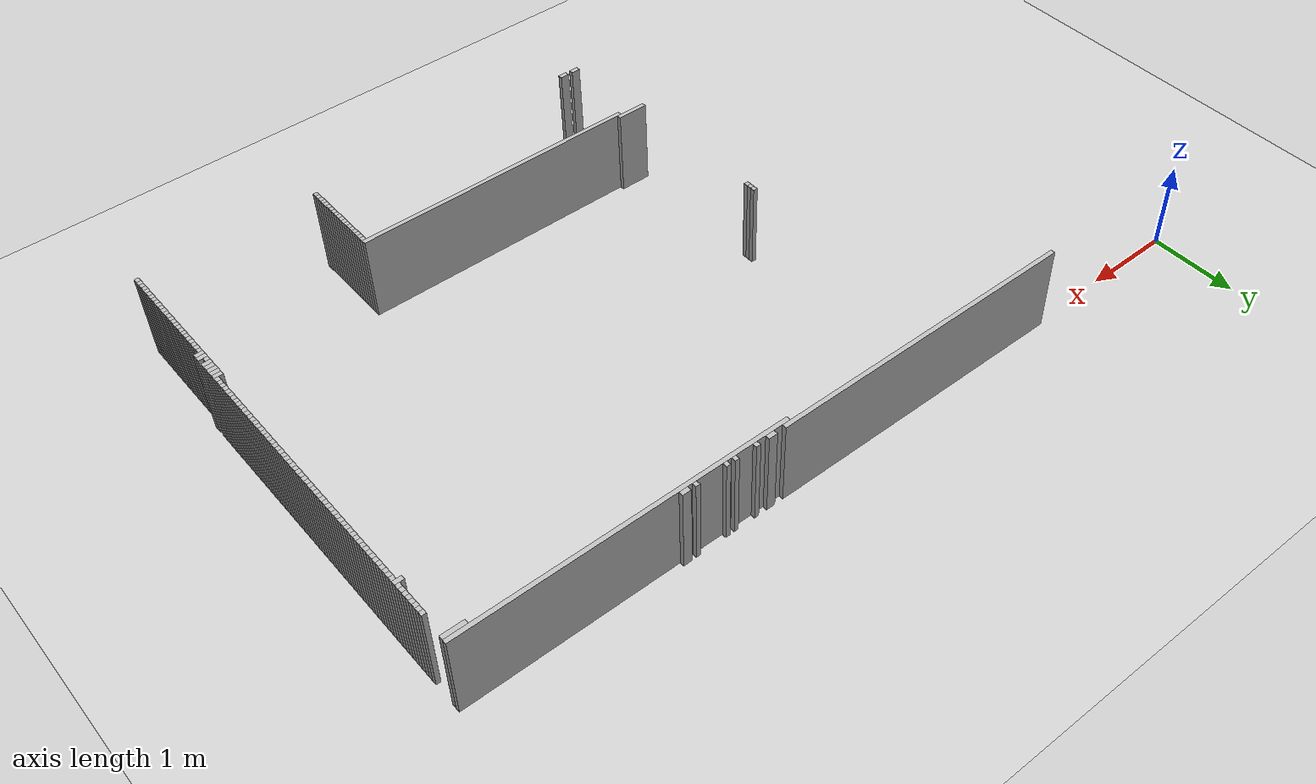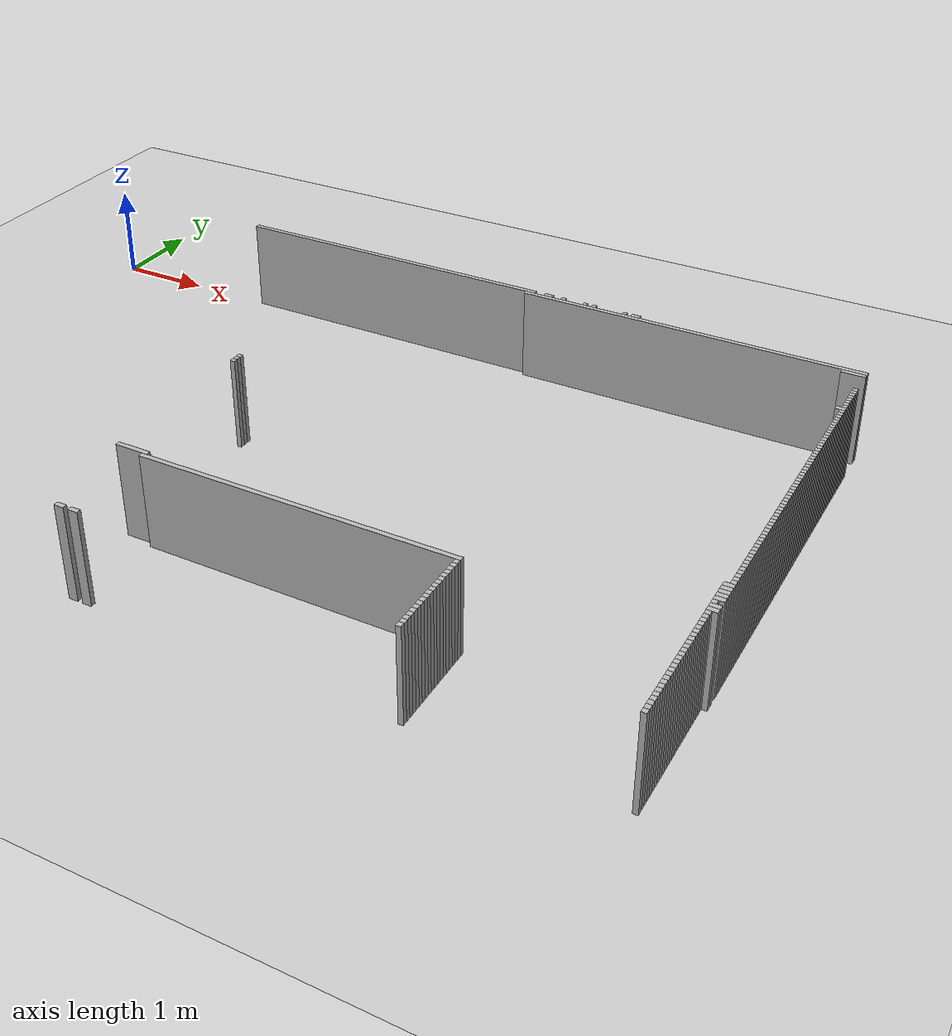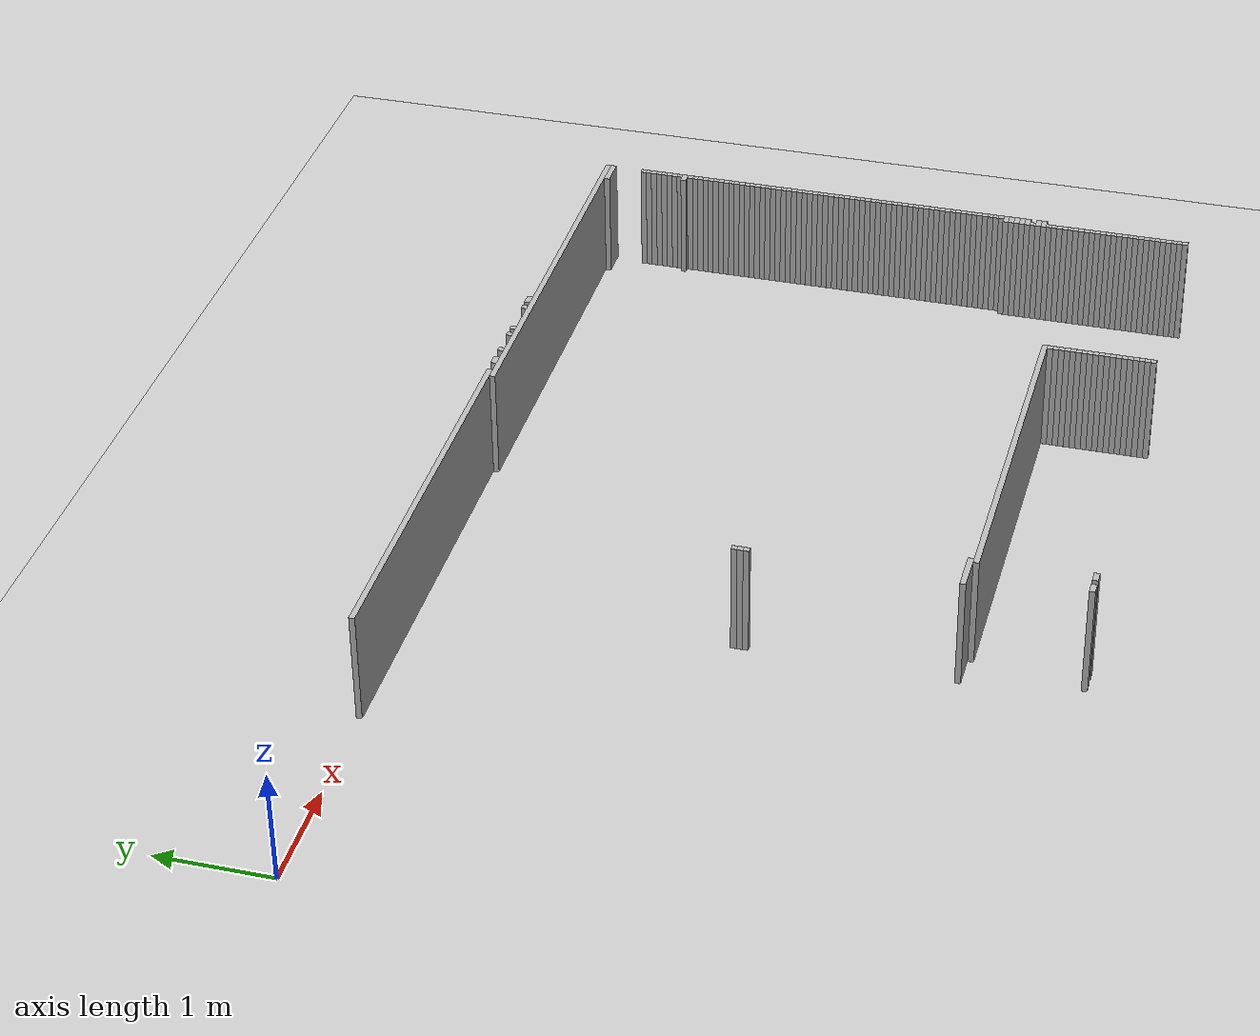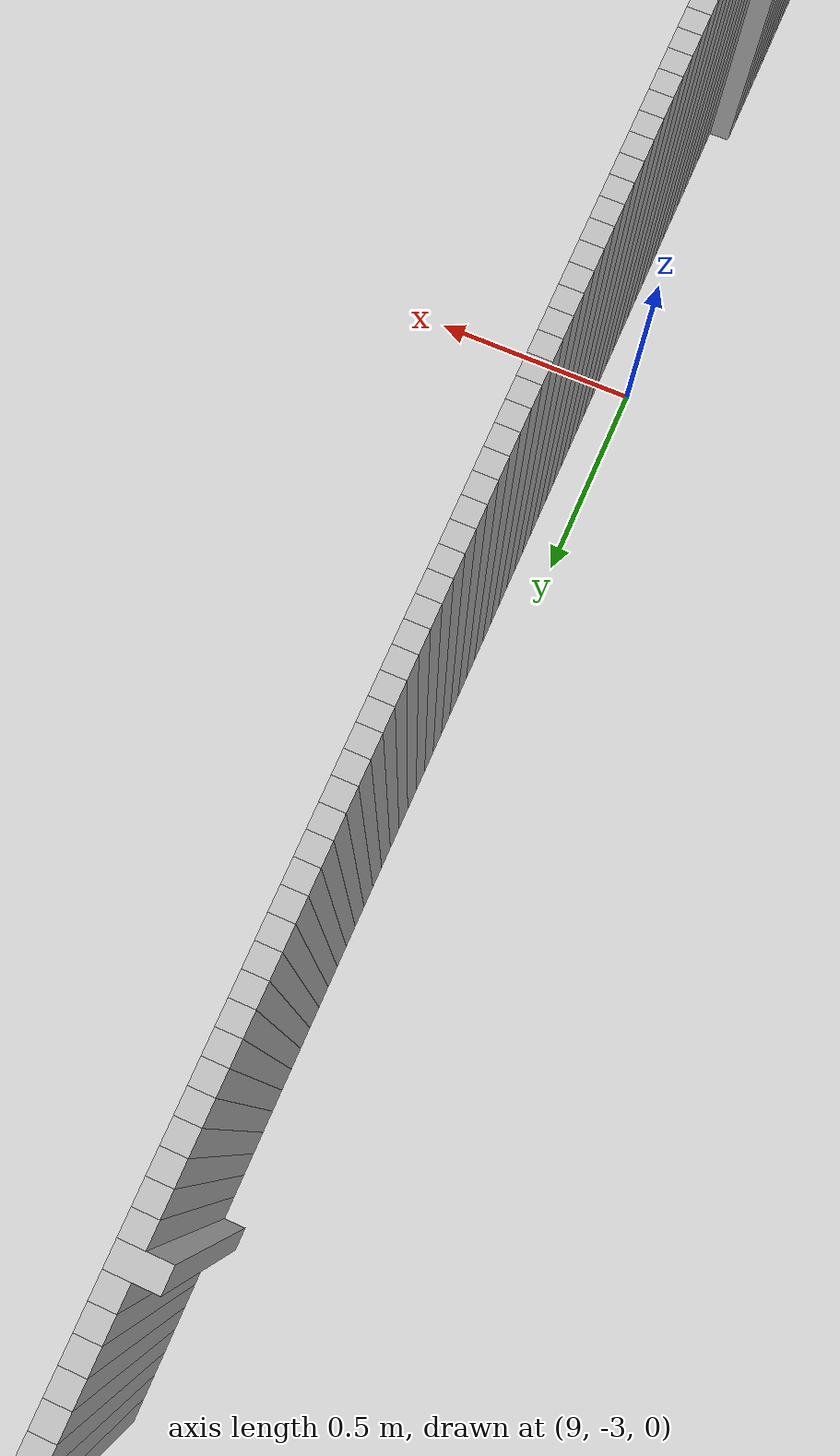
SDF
<sdf version="1.6">
 <world name="udh1_world">
  <include><uri>model://ground_plane</uri></include>
  <include><uri>model://sun</uri></include>
  <model name="wall_1461">
   <static>true</static>
   <pose>3.7300000000000004 0.019999999999999574 0.5 0 0 0</pose>
   <link name="link">
    <collision name="col"><geometry><box><size>3.6 0.05 1</size></box></geometry></collision>
    <visual name="vis"><geometry><box><size>3.6 0.05 1</size></box></geometry></visual>
   </link>
  </model>
  <model name="wall_1462">
   <static>true</static>
   <pose>5.6800000000000015 0.019999999999999574 0.5 0 0 0</pose>
   <link name="link">
    <collision name="col"><geometry><box><size>0.1 0.05 1</size></box></geometry></collision>
    <visual name="vis"><geometry><box><size>0.1 0.05 1</size></box></geometry></visual>
   </link>
  </model>
  <model name="wall_1463">
   <static>true</static>
   <pose>5.855 0.019999999999999574 0.5 0 0 0</pose>
   <link name="link">
    <collision name="col"><geometry><box><size>0.05 0.05 1</size></box></geometry></collision>
    <visual name="vis"><geometry><box><size>0.05 0.05 1</size></box></geometry></visual>
   </link>
  </model>
  <model name="wall_1464">
   <static>true</static>
   <pose>6.105 0.019999999999999574 0.5 0 0 0</pose>
   <link name="link">
    <collision name="col"><geometry><box><size>0.05 0.05 1</size></box></geometry></collision>
    <visual name="vis"><geometry><box><size>0.05 0.05 1</size></box></geometry></visual>
   </link>
  </model>
  <model name="wall_1465">
   <static>true</static>
   <pose>6.205000000000002 0.019999999999999574 0.5 0 0 0</pose>
   <link name="link">
    <collision name="col"><geometry><box><size>0.05 0.05 1</size></box></geometry></collision>
    <visual name="vis"><geometry><box><size>0.05 0.05 1</size></box></geometry></visual>
   </link>
  </model>
  <model name="wall_1466">
   <static>true</static>
   <pose>6.5550000000000015 0.019999999999999574 0.5 0 0 0</pose>
   <link name="link">
    <collision name="col"><geometry><box><size>0.05 0.05 1</size></box></geometry></collision>
    <visual name="vis"><geometry><box><size>0.05 0.05 1</size></box></geometry></visual>
   </link>
  </model>
  <model name="wall_1467">
   <static>true</static>
   <pose>6.6800000000000015 0.019999999999999574 0.5 0 0 0</pose>
   <link name="link">
    <collision name="col"><geometry><box><size>0.1 0.05 1</size></box></geometry></collision>
    <visual name="vis"><geometry><box><size>0.1 0.05 1</size></box></geometry></visual>
   </link>
  </model>
  <model name="wall_1474">
   <static>true</static>
   <pose>7.280000000000001 -0.030000000000001137 0.5 0 0 0</pose>
   <link name="link">
    <collision name="col"><geometry><box><size>3.7 0.05 1</size></box></geometry></collision>
    <visual name="vis"><geometry><box><size>3.7 0.05 1</size></box></geometry></visual>
   </link>
  </model>
  <model name="wall_1481">
   <static>true</static>
   <pose>9.005000000000003 -0.08000000000000007 0.5 0 0 0</pose>
   <link name="link">
    <collision name="col"><geometry><box><size>0.25 0.05 1</size></box></geometry></collision>
    <visual name="vis"><geometry><box><size>0.25 0.05 1</size></box></geometry></visual>
   </link>
  </model>
  <model name="wall_1517">
   <static>true</static>
   <pose>9.105 -0.3800000000000008 0.5 0 0 0</pose>
   <link name="link">
    <collision name="col"><geometry><box><size>0.05 0.05 1</size></box></geometry></collision>
    <visual name="vis"><geometry><box><size>0.05 0.05 1</size></box></geometry></visual>
   </link>
  </model>
  <model name="wall_1523">
   <static>true</static>
   <pose>9.105 -0.4299999999999997 0.5 0 0 0</pose>
   <link name="link">
    <collision name="col"><geometry><box><size>0.05 0.05 1</size></box></geometry></collision>
    <visual name="vis"><geometry><box><size>0.05 0.05 1</size></box></geometry></visual>
   </link>
  </model>
  <model name="wall_1529">
   <static>true</static>
   <pose>9.105 -0.4800000000000004 0.5 0 0 0</pose>
   <link name="link">
    <collision name="col"><geometry><box><size>0.05 0.05 1</size></box></geometry></collision>
    <visual name="vis"><geometry><box><size>0.05 0.05 1</size></box></geometry></visual>
   </link>
  </model>
  <model name="wall_1535">
   <static>true</static>
   <pose>9.105 -0.5300000000000011 0.5 0 0 0</pose>
   <link name="link">
    <collision name="col"><geometry><box><size>0.05 0.05 1</size></box></geometry></collision>
    <visual name="vis"><geometry><box><size>0.05 0.05 1</size></box></geometry></visual>
   </link>
  </model>
  <model name="wall_1541">
   <static>true</static>
   <pose>9.105 -0.5800000000000001 0.5 0 0 0</pose>
   <link name="link">
    <collision name="col"><geometry><box><size>0.05 0.05 1</size></box></geometry></collision>
    <visual name="vis"><geometry><box><size>0.05 0.05 1</size></box></geometry></visual>
   </link>
  </model>
  <model name="wall_1547">
   <static>true</static>
   <pose>9.105 -0.6300000000000008 0.5 0 0 0</pose>
   <link name="link">
    <collision name="col"><geometry><box><size>0.05 0.05 1</size></box></geometry></collision>
    <visual name="vis"><geometry><box><size>0.05 0.05 1</size></box></geometry></visual>
   </link>
  </model>
  <model name="wall_1553">
   <static>true</static>
   <pose>9.105 -0.6799999999999997 0.5 0 0 0</pose>
   <link name="link">
    <collision name="col"><geometry><box><size>0.05 0.05 1</size></box></geometry></collision>
    <visual name="vis"><geometry><box><size>0.05 0.05 1</size></box></geometry></visual>
   </link>
  </model>
  <model name="wall_1559">
   <static>true</static>
   <pose>9.105 -0.7300000000000004 0.5 0 0 0</pose>
   <link name="link">
    <collision name="col"><geometry><box><size>0.05 0.05 1</size></box></geometry></collision>
    <visual name="vis"><geometry><box><size>0.05 0.05 1</size></box></geometry></visual>
   </link>
  </model>
  <model name="wall_1565">
   <static>true</static>
   <pose>9.080000000000002 -0.7800000000000011 0.5 0 0 0</pose>
   <link name="link">
    <collision name="col"><geometry><box><size>0.1 0.05 1</size></box></geometry></collision>
    <visual name="vis"><geometry><box><size>0.1 0.05 1</size></box></geometry></visual>
   </link>
  </model>
  <model name="wall_1571">
   <static>true</static>
   <pose>9.105 -0.8300000000000001 0.5 0 0 0</pose>
   <link name="link">
    <collision name="col"><geometry><box><size>0.05 0.05 1</size></box></geometry></collision>
    <visual name="vis"><geometry><box><size>0.05 0.05 1</size></box></geometry></visual>
   </link>
  </model>
  <model name="wall_1577">
   <static>true</static>
   <pose>9.105 -0.8800000000000008 0.5 0 0 0</pose>
   <link name="link">
    <collision name="col"><geometry><box><size>0.05 0.05 1</size></box></geometry></collision>
    <visual name="vis"><geometry><box><size>0.05 0.05 1</size></box></geometry></visual>
   </link>
  </model>
  <model name="wall_1582">
   <static>true</static>
   <pose>9.105 -0.9299999999999997 0.5 0 0 0</pose>
   <link name="link">
    <collision name="col"><geometry><box><size>0.05 0.05 1</size></box></geometry></collision>
    <visual name="vis"><geometry><box><size>0.05 0.05 1</size></box></geometry></visual>
   </link>
  </model>
  <model name="wall_1586">
   <static>true</static>
   <pose>9.105 -0.9800000000000004 0.5 0 0 0</pose>
   <link name="link">
    <collision name="col"><geometry><box><size>0.05 0.05 1</size></box></geometry></collision>
    <visual name="vis"><geometry><box><size>0.05 0.05 1</size></box></geometry></visual>
   </link>
  </model>
  <model name="wall_1590">
   <static>true</static>
   <pose>9.105 -1.0300000000000011 0.5 0 0 0</pose>
   <link name="link">
    <collision name="col"><geometry><box><size>0.05 0.05 1</size></box></geometry></collision>
    <visual name="vis"><geometry><box><size>0.05 0.05 1</size></box></geometry></visual>
   </link>
  </model>
  <model name="wall_1594">
   <static>true</static>
   <pose>9.105 -1.08 0.5 0 0 0</pose>
   <link name="link">
    <collision name="col"><geometry><box><size>0.05 0.05 1</size></box></geometry></collision>
    <visual name="vis"><geometry><box><size>0.05 0.05 1</size></box></geometry></visual>
   </link>
  </model>
  <model name="wall_1598">
   <static>true</static>
   <pose>9.105 -1.1300000000000008 0.5 0 0 0</pose>
   <link name="link">
    <collision name="col"><geometry><box><size>0.05 0.05 1</size></box></geometry></collision>
    <visual name="vis"><geometry><box><size>0.05 0.05 1</size></box></geometry></visual>
   </link>
  </model>
  <model name="wall_1602">
   <static>true</static>
   <pose>9.105 -1.1800000000000006 0.5 0 0 0</pose>
   <link name="link">
    <collision name="col"><geometry><box><size>0.05 0.05 1</size></box></geometry></collision>
    <visual name="vis"><geometry><box><size>0.05 0.05 1</size></box></geometry></visual>
   </link>
  </model>
  <model name="wall_1606">
   <static>true</static>
   <pose>9.105 -1.2300000000000004 0.5 0 0 0</pose>
   <link name="link">
    <collision name="col"><geometry><box><size>0.05 0.05 1</size></box></geometry></collision>
    <visual name="vis"><geometry><box><size>0.05 0.05 1</size></box></geometry></visual>
   </link>
  </model>
  <model name="wall_1610">
   <static>true</static>
   <pose>9.105 -1.2800000000000002 0.5 0 0 0</pose>
   <link name="link">
    <collision name="col"><geometry><box><size>0.05 0.05 1</size></box></geometry></collision>
    <visual name="vis"><geometry><box><size>0.05 0.05 1</size></box></geometry></visual>
   </link>
  </model>
  <model name="wall_1614">
   <static>true</static>
   <pose>9.105 -1.33 0.5 0 0 0</pose>
   <link name="link">
    <collision name="col"><geometry><box><size>0.05 0.05 1</size></box></geometry></collision>
    <visual name="vis"><geometry><box><size>0.05 0.05 1</size></box></geometry></visual>
   </link>
  </model>
  <model name="wall_1618">
   <static>true</static>
   <pose>9.105 -1.3800000000000008 0.5 0 0 0</pose>
   <link name="link">
    <collision name="col"><geometry><box><size>0.05 0.05 1</size></box></geometry></collision>
    <visual name="vis"><geometry><box><size>0.05 0.05 1</size></box></geometry></visual>
   </link>
  </model>
  <model name="wall_1627">
   <static>true</static>
   <pose>9.105 -1.4300000000000006 0.5 0 0 0</pose>
   <link name="link">
    <collision name="col"><geometry><box><size>0.05 0.05 1</size></box></geometry></collision>
    <visual name="vis"><geometry><box><size>0.05 0.05 1</size></box></geometry></visual>
   </link>
  </model>
  <model name="wall_1633">
   <static>true</static>
   <pose>9.105 -1.4800000000000004 0.5 0 0 0</pose>
   <link name="link">
    <collision name="col"><geometry><box><size>0.05 0.05 1</size></box></geometry></collision>
    <visual name="vis"><geometry><box><size>0.05 0.05 1</size></box></geometry></visual>
   </link>
  </model>
  <model name="wall_1637">
   <static>true</static>
   <pose>9.105 -1.5300000000000002 0.5 0 0 0</pose>
   <link name="link">
    <collision name="col"><geometry><box><size>0.05 0.05 1</size></box></geometry></collision>
    <visual name="vis"><geometry><box><size>0.05 0.05 1</size></box></geometry></visual>
   </link>
  </model>
  <model name="wall_1641">
   <static>true</static>
   <pose>9.105 -1.58 0.5 0 0 0</pose>
   <link name="link">
    <collision name="col"><geometry><box><size>0.05 0.05 1</size></box></geometry></collision>
    <visual name="vis"><geometry><box><size>0.05 0.05 1</size></box></geometry></visual>
   </link>
  </model>
  <model name="wall_1645">
   <static>true</static>
   <pose>9.105 -1.6300000000000008 0.5 0 0 0</pose>
   <link name="link">
    <collision name="col"><geometry><box><size>0.05 0.05 1</size></box></geometry></collision>
    <visual name="vis"><geometry><box><size>0.05 0.05 1</size></box></geometry></visual>
   </link>
  </model>
  <model name="wall_1649">
   <static>true</static>
   <pose>9.105 -1.6800000000000006 0.5 0 0 0</pose>
   <link name="link">
    <collision name="col"><geometry><box><size>0.05 0.05 1</size></box></geometry></collision>
    <visual name="vis"><geometry><box><size>0.05 0.05 1</size></box></geometry></visual>
   </link>
  </model>
  <model name="wall_1653">
   <static>true</static>
   <pose>9.105 -1.7300000000000004 0.5 0 0 0</pose>
   <link name="link">
    <collision name="col"><geometry><box><size>0.05 0.05 1</size></box></geometry></collision>
    <visual name="vis"><geometry><box><size>0.05 0.05 1</size></box></geometry></visual>
   </link>
  </model>
  <model name="wall_1657">
   <static>true</static>
   <pose>9.105 -1.7800000000000002 0.5 0 0 0</pose>
   <link name="link">
    <collision name="col"><geometry><box><size>0.05 0.05 1</size></box></geometry></collision>
    <visual name="vis"><geometry><box><size>0.05 0.05 1</size></box></geometry></visual>
   </link>
  </model>
  <model name="wall_1661">
   <static>true</static>
   <pose>9.105 -1.83 0.5 0 0 0</pose>
   <link name="link">
    <collision name="col"><geometry><box><size>0.05 0.05 1</size></box></geometry></collision>
    <visual name="vis"><geometry><box><size>0.05 0.05 1</size></box></geometry></visual>
   </link>
  </model>
  <model name="wall_1665">
   <static>true</static>
   <pose>9.105 -1.8800000000000008 0.5 0 0 0</pose>
   <link name="link">
    <collision name="col"><geometry><box><size>0.05 0.05 1</size></box></geometry></collision>
    <visual name="vis"><geometry><box><size>0.05 0.05 1</size></box></geometry></visual>
   </link>
  </model>
  <model name="wall_1669">
   <static>true</static>
   <pose>9.105 -1.9300000000000006 0.5 0 0 0</pose>
   <link name="link">
    <collision name="col"><geometry><box><size>0.05 0.05 1</size></box></geometry></collision>
    <visual name="vis"><geometry><box><size>0.05 0.05 1</size></box></geometry></visual>
   </link>
  </model>
  <model name="wall_1673">
   <static>true</static>
   <pose>9.105 -1.9800000000000004 0.5 0 0 0</pose>
   <link name="link">
    <collision name="col"><geometry><box><size>0.05 0.05 1</size></box></geometry></collision>
    <visual name="vis"><geometry><box><size>0.05 0.05 1</size></box></geometry></visual>
   </link>
  </model>
  <model name="wall_1677">
   <static>true</static>
   <pose>9.105 -2.0300000000000002 0.5 0 0 0</pose>
   <link name="link">
    <collision name="col"><geometry><box><size>0.05 0.05 1</size></box></geometry></collision>
    <visual name="vis"><geometry><box><size>0.05 0.05 1</size></box></geometry></visual>
   </link>
  </model>
  <model name="wall_1681">
   <static>true</static>
   <pose>9.105 -2.08 0.5 0 0 0</pose>
   <link name="link">
    <collision name="col"><geometry><box><size>0.05 0.05 1</size></box></geometry></collision>
    <visual name="vis"><geometry><box><size>0.05 0.05 1</size></box></geometry></visual>
   </link>
  </model>
  <model name="wall_1685">
   <static>true</static>
   <pose>9.105 -2.130000000000001 0.5 0 0 0</pose>
   <link name="link">
    <collision name="col"><geometry><box><size>0.05 0.05 1</size></box></geometry></collision>
    <visual name="vis"><geometry><box><size>0.05 0.05 1</size></box></geometry></visual>
   </link>
  </model>
  <model name="wall_1689">
   <static>true</static>
   <pose>9.105 -2.1800000000000006 0.5 0 0 0</pose>
   <link name="link">
    <collision name="col"><geometry><box><size>0.05 0.05 1</size></box></geometry></collision>
    <visual name="vis"><geometry><box><size>0.05 0.05 1</size></box></geometry></visual>
   </link>
  </model>
  <model name="wall_1693">
   <static>true</static>
   <pose>9.105 -2.2300000000000004 0.5 0 0 0</pose>
   <link name="link">
    <collision name="col"><geometry><box><size>0.05 0.05 1</size></box></geometry></collision>
    <visual name="vis"><geometry><box><size>0.05 0.05 1</size></box></geometry></visual>
   </link>
  </model>
  <model name="wall_1697">
   <static>true</static>
   <pose>9.105 -2.2800000000000002 0.5 0 0 0</pose>
   <link name="link">
    <collision name="col"><geometry><box><size>0.05 0.05 1</size></box></geometry></collision>
    <visual name="vis"><geometry><box><size>0.05 0.05 1</size></box></geometry></visual>
   </link>
  </model>
  <model name="wall_1701">
   <static>true</static>
   <pose>9.105 -2.33 0.5 0 0 0</pose>
   <link name="link">
    <collision name="col"><geometry><box><size>0.05 0.05 1</size></box></geometry></collision>
    <visual name="vis"><geometry><box><size>0.05 0.05 1</size></box></geometry></visual>
   </link>
  </model>
  <model name="wall_1705">
   <static>true</static>
   <pose>9.105 -2.380000000000001 0.5 0 0 0</pose>
   <link name="link">
    <collision name="col"><geometry><box><size>0.05 0.05 1</size></box></geometry></collision>
    <visual name="vis"><geometry><box><size>0.05 0.05 1</size></box></geometry></visual>
   </link>
  </model>
  <model name="wall_1709">
   <static>true</static>
   <pose>9.105 -2.4300000000000006 0.5 0 0 0</pose>
   <link name="link">
    <collision name="col"><geometry><box><size>0.05 0.05 1</size></box></geometry></collision>
    <visual name="vis"><geometry><box><size>0.05 0.05 1</size></box></geometry></visual>
   </link>
  </model>
  <model name="wall_1713">
   <static>true</static>
   <pose>9.105 -2.4800000000000004 0.5 0 0 0</pose>
   <link name="link">
    <collision name="col"><geometry><box><size>0.05 0.05 1</size></box></geometry></collision>
    <visual name="vis"><geometry><box><size>0.05 0.05 1</size></box></geometry></visual>
   </link>
  </model>
  <model name="wall_1720">
   <static>true</static>
   <pose>9.105 -2.5300000000000002 0.5 0 0 0</pose>
   <link name="link">
    <collision name="col"><geometry><box><size>0.05 0.05 1</size></box></geometry></collision>
    <visual name="vis"><geometry><box><size>0.05 0.05 1</size></box></geometry></visual>
   </link>
  </model>
  <model name="wall_1725">
   <static>true</static>
   <pose>9.105 -2.58 0.5 0 0 0</pose>
   <link name="link">
    <collision name="col"><geometry><box><size>0.05 0.05 1</size></box></geometry></collision>
    <visual name="vis"><geometry><box><size>0.05 0.05 1</size></box></geometry></visual>
   </link>
  </model>
  <model name="wall_1730">
   <static>true</static>
   <pose>3.5550000000000015 -2.630000000000001 0.5 0 0 0</pose>
   <link name="link">
    <collision name="col"><geometry><box><size>0.05 0.05 1</size></box></geometry></collision>
    <visual name="vis"><geometry><box><size>0.05 0.05 1</size></box></geometry></visual>
   </link>
  </model>
  <model name="wall_1731">
   <static>true</static>
   <pose>9.105 -2.630000000000001 0.5 0 0 0</pose>
   <link name="link">
    <collision name="col"><geometry><box><size>0.05 0.05 1</size></box></geometry></collision>
    <visual name="vis"><geometry><box><size>0.05 0.05 1</size></box></geometry></visual>
   </link>
  </model>
  <model name="wall_1736">
   <static>true</static>
   <pose>3.5550000000000015 -2.6800000000000006 0.5 0 0 0</pose>
   <link name="link">
    <collision name="col"><geometry><box><size>0.05 0.05 1</size></box></geometry></collision>
    <visual name="vis"><geometry><box><size>0.05 0.05 1</size></box></geometry></visual>
   </link>
  </model>
  <model name="wall_1737">
   <static>true</static>
   <pose>9.105 -2.6800000000000006 0.5 0 0 0</pose>
   <link name="link">
    <collision name="col"><geometry><box><size>0.05 0.05 1</size></box></geometry></collision>
    <visual name="vis"><geometry><box><size>0.05 0.05 1</size></box></geometry></visual>
   </link>
  </model>
  <model name="wall_1742">
   <static>true</static>
   <pose>3.5550000000000015 -2.7300000000000004 0.5 0 0 0</pose>
   <link name="link">
    <collision name="col"><geometry><box><size>0.05 0.05 1</size></box></geometry></collision>
    <visual name="vis"><geometry><box><size>0.05 0.05 1</size></box></geometry></visual>
   </link>
  </model>
  <model name="wall_1743">
   <static>true</static>
   <pose>9.105 -2.7300000000000004 0.5 0 0 0</pose>
   <link name="link">
    <collision name="col"><geometry><box><size>0.05 0.05 1</size></box></geometry></collision>
    <visual name="vis"><geometry><box><size>0.05 0.05 1</size></box></geometry></visual>
   </link>
  </model>
  <model name="wall_1749">
   <static>true</static>
   <pose>9.105 -2.7800000000000002 0.5 0 0 0</pose>
   <link name="link">
    <collision name="col"><geometry><box><size>0.05 0.05 1</size></box></geometry></collision>
    <visual name="vis"><geometry><box><size>0.05 0.05 1</size></box></geometry></visual>
   </link>
  </model>
  <model name="wall_1755">
   <static>true</static>
   <pose>9.105 -2.83 0.5 0 0 0</pose>
   <link name="link">
    <collision name="col"><geometry><box><size>0.05 0.05 1</size></box></geometry></collision>
    <visual name="vis"><geometry><box><size>0.05 0.05 1</size></box></geometry></visual>
   </link>
  </model>
  <model name="wall_1761">
   <static>true</static>
   <pose>9.105 -2.880000000000001 0.5 0 0 0</pose>
   <link name="link">
    <collision name="col"><geometry><box><size>0.05 0.05 1</size></box></geometry></collision>
    <visual name="vis"><geometry><box><size>0.05 0.05 1</size></box></geometry></visual>
   </link>
  </model>
  <model name="wall_1767">
   <static>true</static>
   <pose>9.105 -2.9300000000000006 0.5 0 0 0</pose>
   <link name="link">
    <collision name="col"><geometry><box><size>0.05 0.05 1</size></box></geometry></collision>
    <visual name="vis"><geometry><box><size>0.05 0.05 1</size></box></geometry></visual>
   </link>
  </model>
  <model name="wall_1773">
   <static>true</static>
   <pose>9.105 -2.9800000000000004 0.5 0 0 0</pose>
   <link name="link">
    <collision name="col"><geometry><box><size>0.05 0.05 1</size></box></geometry></collision>
    <visual name="vis"><geometry><box><size>0.05 0.05 1</size></box></geometry></visual>
   </link>
  </model>
  <model name="wall_1779">
   <static>true</static>
   <pose>9.105 -3.0300000000000002 0.5 0 0 0</pose>
   <link name="link">
    <collision name="col"><geometry><box><size>0.05 0.05 1</size></box></geometry></collision>
    <visual name="vis"><geometry><box><size>0.05 0.05 1</size></box></geometry></visual>
   </link>
  </model>
  <model name="wall_1785">
   <static>true</static>
   <pose>9.105 -3.08 0.5 0 0 0</pose>
   <link name="link">
    <collision name="col"><geometry><box><size>0.05 0.05 1</size></box></geometry></collision>
    <visual name="vis"><geometry><box><size>0.05 0.05 1</size></box></geometry></visual>
   </link>
  </model>
  <model name="wall_1791">
   <static>true</static>
   <pose>9.105 -3.130000000000001 0.5 0 0 0</pose>
   <link name="link">
    <collision name="col"><geometry><box><size>0.05 0.05 1</size></box></geometry></collision>
    <visual name="vis"><geometry><box><size>0.05 0.05 1</size></box></geometry></visual>
   </link>
  </model>
  <model name="wall_1797">
   <static>true</static>
   <pose>9.105 -3.1800000000000006 0.5 0 0 0</pose>
   <link name="link">
    <collision name="col"><geometry><box><size>0.05 0.05 1</size></box></geometry></collision>
    <visual name="vis"><geometry><box><size>0.05 0.05 1</size></box></geometry></visual>
   </link>
  </model>
  <model name="wall_1803">
   <static>true</static>
   <pose>9.105 -3.2300000000000004 0.5 0 0 0</pose>
   <link name="link">
    <collision name="col"><geometry><box><size>0.05 0.05 1</size></box></geometry></collision>
    <visual name="vis"><geometry><box><size>0.05 0.05 1</size></box></geometry></visual>
   </link>
  </model>
  <model name="wall_1809">
   <static>true</static>
   <pose>9.105 -3.2800000000000002 0.5 0 0 0</pose>
   <link name="link">
    <collision name="col"><geometry><box><size>0.05 0.05 1</size></box></geometry></collision>
    <visual name="vis"><geometry><box><size>0.05 0.05 1</size></box></geometry></visual>
   </link>
  </model>
  <model name="wall_1815">
   <static>true</static>
   <pose>9.105 -3.33 0.5 0 0 0</pose>
   <link name="link">
    <collision name="col"><geometry><box><size>0.05 0.05 1</size></box></geometry></collision>
    <visual name="vis"><geometry><box><size>0.05 0.05 1</size></box></geometry></visual>
   </link>
  </model>
  <model name="wall_1821">
   <static>true</static>
   <pose>9.105 -3.380000000000001 0.5 0 0 0</pose>
   <link name="link">
    <collision name="col"><geometry><box><size>0.05 0.05 1</size></box></geometry></collision>
    <visual name="vis"><geometry><box><size>0.05 0.05 1</size></box></geometry></visual>
   </link>
  </model>
  <model name="wall_1827">
   <static>true</static>
   <pose>9.105 -3.4300000000000006 0.5 0 0 0</pose>
   <link name="link">
    <collision name="col"><geometry><box><size>0.05 0.05 1</size></box></geometry></collision>
    <visual name="vis"><geometry><box><size>0.05 0.05 1</size></box></geometry></visual>
   </link>
  </model>
  <model name="wall_1841">
   <static>true</static>
   <pose>9.105 -3.4800000000000004 0.5 0 0 0</pose>
   <link name="link">
    <collision name="col"><geometry><box><size>0.05 0.05 1</size></box></geometry></collision>
    <visual name="vis"><geometry><box><size>0.05 0.05 1</size></box></geometry></visual>
   </link>
  </model>
  <model name="wall_1847">
   <static>true</static>
   <pose>9.105 -3.5300000000000002 0.5 0 0 0</pose>
   <link name="link">
    <collision name="col"><geometry><box><size>0.05 0.05 1</size></box></geometry></collision>
    <visual name="vis"><geometry><box><size>0.05 0.05 1</size></box></geometry></visual>
   </link>
  </model>
  <model name="wall_1853">
   <static>true</static>
   <pose>9.105 -3.58 0.5 0 0 0</pose>
   <link name="link">
    <collision name="col"><geometry><box><size>0.05 0.05 1</size></box></geometry></collision>
    <visual name="vis"><geometry><box><size>0.05 0.05 1</size></box></geometry></visual>
   </link>
  </model>
  <model name="wall_1859">
   <static>true</static>
   <pose>9.105 -3.630000000000001 0.5 0 0 0</pose>
   <link name="link">
    <collision name="col"><geometry><box><size>0.05 0.05 1</size></box></geometry></collision>
    <visual name="vis"><geometry><box><size>0.05 0.05 1</size></box></geometry></visual>
   </link>
  </model>
  <model name="wall_1865">
   <static>true</static>
   <pose>9.105 -3.6800000000000006 0.5 0 0 0</pose>
   <link name="link">
    <collision name="col"><geometry><box><size>0.05 0.05 1</size></box></geometry></collision>
    <visual name="vis"><geometry><box><size>0.05 0.05 1</size></box></geometry></visual>
   </link>
  </model>
  <model name="wall_1871">
   <static>true</static>
   <pose>9.105 -3.7300000000000004 0.5 0 0 0</pose>
   <link name="link">
    <collision name="col"><geometry><box><size>0.05 0.05 1</size></box></geometry></collision>
    <visual name="vis"><geometry><box><size>0.05 0.05 1</size></box></geometry></visual>
   </link>
  </model>
  <model name="wall_1877">
   <static>true</static>
   <pose>9.105 -3.7800000000000002 0.5 0 0 0</pose>
   <link name="link">
    <collision name="col"><geometry><box><size>0.05 0.05 1</size></box></geometry></collision>
    <visual name="vis"><geometry><box><size>0.05 0.05 1</size></box></geometry></visual>
   </link>
  </model>
  <model name="wall_1883">
   <static>true</static>
   <pose>9.080000000000002 -3.83 0.5 0 0 0</pose>
   <link name="link">
    <collision name="col"><geometry><box><size>0.1 0.05 1</size></box></geometry></collision>
    <visual name="vis"><geometry><box><size>0.1 0.05 1</size></box></geometry></visual>
   </link>
  </model>
  <model name="wall_1889">
   <static>true</static>
   <pose>9.080000000000002 -3.880000000000001 0.5 0 0 0</pose>
   <link name="link">
    <collision name="col"><geometry><box><size>0.1 0.05 1</size></box></geometry></collision>
    <visual name="vis"><geometry><box><size>0.1 0.05 1</size></box></geometry></visual>
   </link>
  </model>
  <model name="wall_1896">
   <static>true</static>
   <pose>9.080000000000002 -3.9300000000000006 0.5 0 0 0</pose>
   <link name="link">
    <collision name="col"><geometry><box><size>0.1 0.05 1</size></box></geometry></collision>
    <visual name="vis"><geometry><box><size>0.1 0.05 1</size></box></geometry></visual>
   </link>
  </model>
  <model name="wall_1905">
   <static>true</static>
   <pose>9.080000000000002 -3.9800000000000004 0.5 0 0 0</pose>
   <link name="link">
    <collision name="col"><geometry><box><size>0.1 0.05 1</size></box></geometry></collision>
    <visual name="vis"><geometry><box><size>0.1 0.05 1</size></box></geometry></visual>
   </link>
  </model>
  <model name="wall_1913">
   <static>true</static>
   <pose>9.080000000000002 -4.03 0.5 0 0 0</pose>
   <link name="link">
    <collision name="col"><geometry><box><size>0.1 0.05 1</size></box></geometry></collision>
    <visual name="vis"><geometry><box><size>0.1 0.05 1</size></box></geometry></visual>
   </link>
  </model>
  <model name="wall_1921">
   <static>true</static>
   <pose>9.055 -4.08 0.5 0 0 0</pose>
   <link name="link">
    <collision name="col"><geometry><box><size>0.05 0.05 1</size></box></geometry></collision>
    <visual name="vis"><geometry><box><size>0.05 0.05 1</size></box></geometry></visual>
   </link>
  </model>
  <model name="wall_1929">
   <static>true</static>
   <pose>9.080000000000002 -4.130000000000001 0.5 0 0 0</pose>
   <link name="link">
    <collision name="col"><geometry><box><size>0.1 0.05 1</size></box></geometry></collision>
    <visual name="vis"><geometry><box><size>0.1 0.05 1</size></box></geometry></visual>
   </link>
  </model>
  <model name="wall_1937">
   <static>true</static>
   <pose>9.080000000000002 -4.180000000000001 0.5 0 0 0</pose>
   <link name="link">
    <collision name="col"><geometry><box><size>0.1 0.05 1</size></box></geometry></collision>
    <visual name="vis"><geometry><box><size>0.1 0.05 1</size></box></geometry></visual>
   </link>
  </model>
  <model name="wall_1945">
   <static>true</static>
   <pose>9.055 -4.23 0.5 0 0 0</pose>
   <link name="link">
    <collision name="col"><geometry><box><size>0.05 0.05 1</size></box></geometry></collision>
    <visual name="vis"><geometry><box><size>0.05 0.05 1</size></box></geometry></visual>
   </link>
  </model>
  <model name="wall_1953">
   <static>true</static>
   <pose>9.055 -4.28 0.5 0 0 0</pose>
   <link name="link">
    <collision name="col"><geometry><box><size>0.05 0.05 1</size></box></geometry></collision>
    <visual name="vis"><geometry><box><size>0.05 0.05 1</size></box></geometry></visual>
   </link>
  </model>
  <model name="wall_1961">
   <static>true</static>
   <pose>9.055 -4.33 0.5 0 0 0</pose>
   <link name="link">
    <collision name="col"><geometry><box><size>0.05 0.05 1</size></box></geometry></collision>
    <visual name="vis"><geometry><box><size>0.05 0.05 1</size></box></geometry></visual>
   </link>
  </model>
  <model name="wall_1969">
   <static>true</static>
   <pose>9.055 -4.380000000000001 0.5 0 0 0</pose>
   <link name="link">
    <collision name="col"><geometry><box><size>0.05 0.05 1</size></box></geometry></collision>
    <visual name="vis"><geometry><box><size>0.05 0.05 1</size></box></geometry></visual>
   </link>
  </model>
  <model name="wall_1977">
   <static>true</static>
   <pose>9.055 -4.430000000000001 0.5 0 0 0</pose>
   <link name="link">
    <collision name="col"><geometry><box><size>0.05 0.05 1</size></box></geometry></collision>
    <visual name="vis"><geometry><box><size>0.05 0.05 1</size></box></geometry></visual>
   </link>
  </model>
  <model name="wall_1984">
   <static>true</static>
   <pose>3.705000000000002 -4.48 0.5 0 0 0</pose>
   <link name="link">
    <collision name="col"><geometry><box><size>0.35000000000000003 0.05 1</size></box></geometry></collision>
    <visual name="vis"><geometry><box><size>0.35000000000000003 0.05 1</size></box></geometry></visual>
   </link>
  </model>
  <model name="wall_1985">
   <static>true</static>
   <pose>9.055 -4.48 0.5 0 0 0</pose>
   <link name="link">
    <collision name="col"><geometry><box><size>0.05 0.05 1</size></box></geometry></collision>
    <visual name="vis"><geometry><box><size>0.05 0.05 1</size></box></geometry></visual>
   </link>
  </model>
  <model name="wall_1992">
   <static>true</static>
   <pose>5.455000000000002 -4.53 0.5 0 0 0</pose>
   <link name="link">
    <collision name="col"><geometry><box><size>3.25 0.05 1</size></box></geometry></collision>
    <visual name="vis"><geometry><box><size>3.25 0.05 1</size></box></geometry></visual>
   </link>
  </model>
  <model name="wall_1993">
   <static>true</static>
   <pose>9.055 -4.53 0.5 0 0 0</pose>
   <link name="link">
    <collision name="col"><geometry><box><size>0.05 0.05 1</size></box></geometry></collision>
    <visual name="vis"><geometry><box><size>0.05 0.05 1</size></box></geometry></visual>
   </link>
  </model>
  <model name="wall_1999">
   <static>true</static>
   <pose>7.055 -4.580000000000001 0.5 0 0 0</pose>
   <link name="link">
    <collision name="col"><geometry><box><size>0.05 0.05 1</size></box></geometry></collision>
    <visual name="vis"><geometry><box><size>0.05 0.05 1</size></box></geometry></visual>
   </link>
  </model>
  <model name="wall_2000">
   <static>true</static>
   <pose>9.055 -4.580000000000001 0.5 0 0 0</pose>
   <link name="link">
    <collision name="col"><geometry><box><size>0.05 0.05 1</size></box></geometry></collision>
    <visual name="vis"><geometry><box><size>0.05 0.05 1</size></box></geometry></visual>
   </link>
  </model>
  <model name="wall_2007">
   <static>true</static>
   <pose>7.055 -4.630000000000001 0.5 0 0 0</pose>
   <link name="link">
    <collision name="col"><geometry><box><size>0.05 0.05 1</size></box></geometry></collision>
    <visual name="vis"><geometry><box><size>0.05 0.05 1</size></box></geometry></visual>
   </link>
  </model>
  <model name="wall_2008">
   <static>true</static>
   <pose>9.055 -4.630000000000001 0.5 0 0 0</pose>
   <link name="link">
    <collision name="col"><geometry><box><size>0.05 0.05 1</size></box></geometry></collision>
    <visual name="vis"><geometry><box><size>0.05 0.05 1</size></box></geometry></visual>
   </link>
  </model>
  <model name="wall_2015">
   <static>true</static>
   <pose>7.055 -4.680000000000001 0.5 0 0 0</pose>
   <link name="link">
    <collision name="col"><geometry><box><size>0.05 0.05 1</size></box></geometry></collision>
    <visual name="vis"><geometry><box><size>0.05 0.05 1</size></box></geometry></visual>
   </link>
  </model>
  <model name="wall_2016">
   <static>true</static>
   <pose>9.055 -4.680000000000001 0.5 0 0 0</pose>
   <link name="link">
    <collision name="col"><geometry><box><size>0.05 0.05 1</size></box></geometry></collision>
    <visual name="vis"><geometry><box><size>0.05 0.05 1</size></box></geometry></visual>
   </link>
  </model>
  <model name="wall_2023">
   <static>true</static>
   <pose>7.055 -4.73 0.5 0 0 0</pose>
   <link name="link">
    <collision name="col"><geometry><box><size>0.05 0.05 1</size></box></geometry></collision>
    <visual name="vis"><geometry><box><size>0.05 0.05 1</size></box></geometry></visual>
   </link>
  </model>
  <model name="wall_2024">
   <static>true</static>
   <pose>9.055 -4.73 0.5 0 0 0</pose>
   <link name="link">
    <collision name="col"><geometry><box><size>0.05 0.05 1</size></box></geometry></collision>
    <visual name="vis"><geometry><box><size>0.05 0.05 1</size></box></geometry></visual>
   </link>
  </model>
  <model name="wall_2031">
   <static>true</static>
   <pose>7.055 -4.78 0.5 0 0 0</pose>
   <link name="link">
    <collision name="col"><geometry><box><size>0.05 0.05 1</size></box></geometry></collision>
    <visual name="vis"><geometry><box><size>0.05 0.05 1</size></box></geometry></visual>
   </link>
  </model>
  <model name="wall_2032">
   <static>true</static>
   <pose>9.055 -4.78 0.5 0 0 0</pose>
   <link name="link">
    <collision name="col"><geometry><box><size>0.05 0.05 1</size></box></geometry></collision>
    <visual name="vis"><geometry><box><size>0.05 0.05 1</size></box></geometry></visual>
   </link>
  </model>
  <model name="wall_2039">
   <static>true</static>
   <pose>7.055 -4.830000000000001 0.5 0 0 0</pose>
   <link name="link">
    <collision name="col"><geometry><box><size>0.05 0.05 1</size></box></geometry></collision>
    <visual name="vis"><geometry><box><size>0.05 0.05 1</size></box></geometry></visual>
   </link>
  </model>
  <model name="wall_2040">
   <static>true</static>
   <pose>9.055 -4.830000000000001 0.5 0 0 0</pose>
   <link name="link">
    <collision name="col"><geometry><box><size>0.05 0.05 1</size></box></geometry></collision>
    <visual name="vis"><geometry><box><size>0.05 0.05 1</size></box></geometry></visual>
   </link>
  </model>
  <model name="wall_2047">
   <static>true</static>
   <pose>7.055 -4.880000000000001 0.5 0 0 0</pose>
   <link name="link">
    <collision name="col"><geometry><box><size>0.05 0.05 1</size></box></geometry></collision>
    <visual name="vis"><geometry><box><size>0.05 0.05 1</size></box></geometry></visual>
   </link>
  </model>
  <model name="wall_2048">
   <static>true</static>
   <pose>9.055 -4.880000000000001 0.5 0 0 0</pose>
   <link name="link">
    <collision name="col"><geometry><box><size>0.05 0.05 1</size></box></geometry></collision>
    <visual name="vis"><geometry><box><size>0.05 0.05 1</size></box></geometry></visual>
   </link>
  </model>
  <model name="wall_2055">
   <static>true</static>
   <pose>7.055 -4.930000000000001 0.5 0 0 0</pose>
   <link name="link">
    <collision name="col"><geometry><box><size>0.05 0.05 1</size></box></geometry></collision>
    <visual name="vis"><geometry><box><size>0.05 0.05 1</size></box></geometry></visual>
   </link>
  </model>
  <model name="wall_2056">
   <static>true</static>
   <pose>9.055 -4.930000000000001 0.5 0 0 0</pose>
   <link name="link">
    <collision name="col"><geometry><box><size>0.05 0.05 1</size></box></geometry></collision>
    <visual name="vis"><geometry><box><size>0.05 0.05 1</size></box></geometry></visual>
   </link>
  </model>
  <model name="wall_2062">
   <static>true</static>
   <pose>7.055 -4.98 0.5 0 0 0</pose>
   <link name="link">
    <collision name="col"><geometry><box><size>0.05 0.05 1</size></box></geometry></collision>
    <visual name="vis"><geometry><box><size>0.05 0.05 1</size></box></geometry></visual>
   </link>
  </model>
  <model name="wall_2063">
   <static>true</static>
   <pose>9.055 -4.98 0.5 0 0 0</pose>
   <link name="link">
    <collision name="col"><geometry><box><size>0.05 0.05 1</size></box></geometry></collision>
    <visual name="vis"><geometry><box><size>0.05 0.05 1</size></box></geometry></visual>
   </link>
  </model>
  <model name="wall_2068">
   <static>true</static>
   <pose>7.055 -5.03 0.5 0 0 0</pose>
   <link name="link">
    <collision name="col"><geometry><box><size>0.05 0.05 1</size></box></geometry></collision>
    <visual name="vis"><geometry><box><size>0.05 0.05 1</size></box></geometry></visual>
   </link>
  </model>
  <model name="wall_2069">
   <static>true</static>
   <pose>9.055 -5.03 0.5 0 0 0</pose>
   <link name="link">
    <collision name="col"><geometry><box><size>0.05 0.05 1</size></box></geometry></collision>
    <visual name="vis"><geometry><box><size>0.05 0.05 1</size></box></geometry></visual>
   </link>
  </model>
  <model name="wall_2074">
   <static>true</static>
   <pose>7.055 -5.080000000000001 0.5 0 0 0</pose>
   <link name="link">
    <collision name="col"><geometry><box><size>0.05 0.05 1</size></box></geometry></collision>
    <visual name="vis"><geometry><box><size>0.05 0.05 1</size></box></geometry></visual>
   </link>
  </model>
  <model name="wall_2075">
   <static>true</static>
   <pose>9.055 -5.080000000000001 0.5 0 0 0</pose>
   <link name="link">
    <collision name="col"><geometry><box><size>0.05 0.05 1</size></box></geometry></collision>
    <visual name="vis"><geometry><box><size>0.05 0.05 1</size></box></geometry></visual>
   </link>
  </model>
  <model name="wall_2080">
   <static>true</static>
   <pose>7.055 -5.130000000000001 0.5 0 0 0</pose>
   <link name="link">
    <collision name="col"><geometry><box><size>0.05 0.05 1</size></box></geometry></collision>
    <visual name="vis"><geometry><box><size>0.05 0.05 1</size></box></geometry></visual>
   </link>
  </model>
  <model name="wall_2081">
   <static>true</static>
   <pose>9.055 -5.130000000000001 0.5 0 0 0</pose>
   <link name="link">
    <collision name="col"><geometry><box><size>0.05 0.05 1</size></box></geometry></collision>
    <visual name="vis"><geometry><box><size>0.05 0.05 1</size></box></geometry></visual>
   </link>
  </model>
  <model name="wall_2086">
   <static>true</static>
   <pose>7.055 -5.180000000000001 0.5 0 0 0</pose>
   <link name="link">
    <collision name="col"><geometry><box><size>0.05 0.05 1</size></box></geometry></collision>
    <visual name="vis"><geometry><box><size>0.05 0.05 1</size></box></geometry></visual>
   </link>
  </model>
  <model name="wall_2087">
   <static>true</static>
   <pose>9.055 -5.180000000000001 0.5 0 0 0</pose>
   <link name="link">
    <collision name="col"><geometry><box><size>0.05 0.05 1</size></box></geometry></collision>
    <visual name="vis"><geometry><box><size>0.05 0.05 1</size></box></geometry></visual>
   </link>
  </model>
  <model name="wall_2092">
   <static>true</static>
   <pose>7.055 -5.23 0.5 0 0 0</pose>
   <link name="link">
    <collision name="col"><geometry><box><size>0.05 0.05 1</size></box></geometry></collision>
    <visual name="vis"><geometry><box><size>0.05 0.05 1</size></box></geometry></visual>
   </link>
  </model>
  <model name="wall_2093">
   <static>true</static>
   <pose>9.055 -5.23 0.5 0 0 0</pose>
   <link name="link">
    <collision name="col"><geometry><box><size>0.05 0.05 1</size></box></geometry></collision>
    <visual name="vis"><geometry><box><size>0.05 0.05 1</size></box></geometry></visual>
   </link>
  </model>
  <model name="wall_2098">
   <static>true</static>
   <pose>7.055 -5.280000000000001 0.5 0 0 0</pose>
   <link name="link">
    <collision name="col"><geometry><box><size>0.05 0.05 1</size></box></geometry></collision>
    <visual name="vis"><geometry><box><size>0.05 0.05 1</size></box></geometry></visual>
   </link>
  </model>
  <model name="wall_2099">
   <static>true</static>
   <pose>9.055 -5.280000000000001 0.5 0 0 0</pose>
   <link name="link">
    <collision name="col"><geometry><box><size>0.05 0.05 1</size></box></geometry></collision>
    <visual name="vis"><geometry><box><size>0.05 0.05 1</size></box></geometry></visual>
   </link>
  </model>
  <model name="wall_2110">
   <static>true</static>
   <pose>7.055 -5.33 0.5 0 0 0</pose>
   <link name="link">
    <collision name="col"><geometry><box><size>0.05 0.05 1</size></box></geometry></collision>
    <visual name="vis"><geometry><box><size>0.05 0.05 1</size></box></geometry></visual>
   </link>
  </model>
  <model name="wall_2111">
   <static>true</static>
   <pose>9.055 -5.33 0.5 0 0 0</pose>
   <link name="link">
    <collision name="col"><geometry><box><size>0.05 0.05 1</size></box></geometry></collision>
    <visual name="vis"><geometry><box><size>0.05 0.05 1</size></box></geometry></visual>
   </link>
  </model>
  <model name="wall_2117">
   <static>true</static>
   <pose>7.055 -5.380000000000001 0.5 0 0 0</pose>
   <link name="link">
    <collision name="col"><geometry><box><size>0.05 0.05 1</size></box></geometry></collision>
    <visual name="vis"><geometry><box><size>0.05 0.05 1</size></box></geometry></visual>
   </link>
  </model>
  <model name="wall_2118">
   <static>true</static>
   <pose>9.055 -5.380000000000001 0.5 0 0 0</pose>
   <link name="link">
    <collision name="col"><geometry><box><size>0.05 0.05 1</size></box></geometry></collision>
    <visual name="vis"><geometry><box><size>0.05 0.05 1</size></box></geometry></visual>
   </link>
  </model>
  <model name="wall_2125">
   <static>true</static>
   <pose>7.055 -5.430000000000001 0.5 0 0 0</pose>
   <link name="link">
    <collision name="col"><geometry><box><size>0.05 0.05 1</size></box></geometry></collision>
    <visual name="vis"><geometry><box><size>0.05 0.05 1</size></box></geometry></visual>
   </link>
  </model>
  <model name="wall_2126">
   <static>true</static>
   <pose>9.055 -5.430000000000001 0.5 0 0 0</pose>
   <link name="link">
    <collision name="col"><geometry><box><size>0.05 0.05 1</size></box></geometry></collision>
    <visual name="vis"><geometry><box><size>0.05 0.05 1</size></box></geometry></visual>
   </link>
  </model>
  <model name="wall_2134">
   <static>true</static>
   <pose>3.7300000000000004 -5.48 0.5 0 0 0</pose>
   <link name="link">
    <collision name="col"><geometry><box><size>0.1 0.05 1</size></box></geometry></collision>
    <visual name="vis"><geometry><box><size>0.1 0.05 1</size></box></geometry></visual>
   </link>
  </model>
  <model name="wall_2135">
   <static>true</static>
   <pose>3.880000000000001 -5.48 0.5 0 0 0</pose>
   <link name="link">
    <collision name="col"><geometry><box><size>0.1 0.05 1</size></box></geometry></collision>
    <visual name="vis"><geometry><box><size>0.1 0.05 1</size></box></geometry></visual>
   </link>
  </model>
  <model name="wall_2136">
   <static>true</static>
   <pose>7.055 -5.48 0.5 0 0 0</pose>
   <link name="link">
    <collision name="col"><geometry><box><size>0.05 0.05 1</size></box></geometry></collision>
    <visual name="vis"><geometry><box><size>0.05 0.05 1</size></box></geometry></visual>
   </link>
  </model>
  <model name="wall_2137">
   <static>true</static>
   <pose>9.055 -5.48 0.5 0 0 0</pose>
   <link name="link">
    <collision name="col"><geometry><box><size>0.05 0.05 1</size></box></geometry></collision>
    <visual name="vis"><geometry><box><size>0.05 0.05 1</size></box></geometry></visual>
   </link>
  </model>
 </world>
</sdf>
